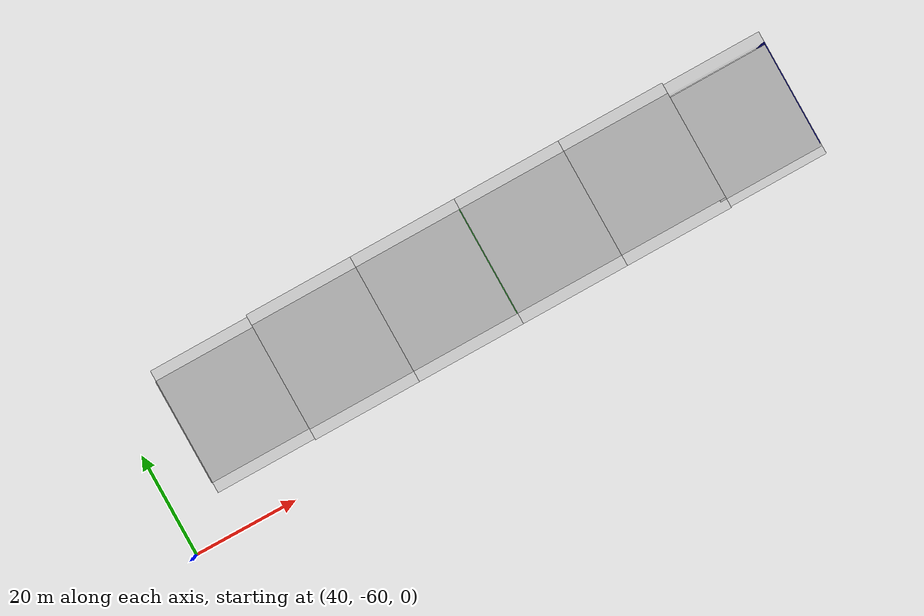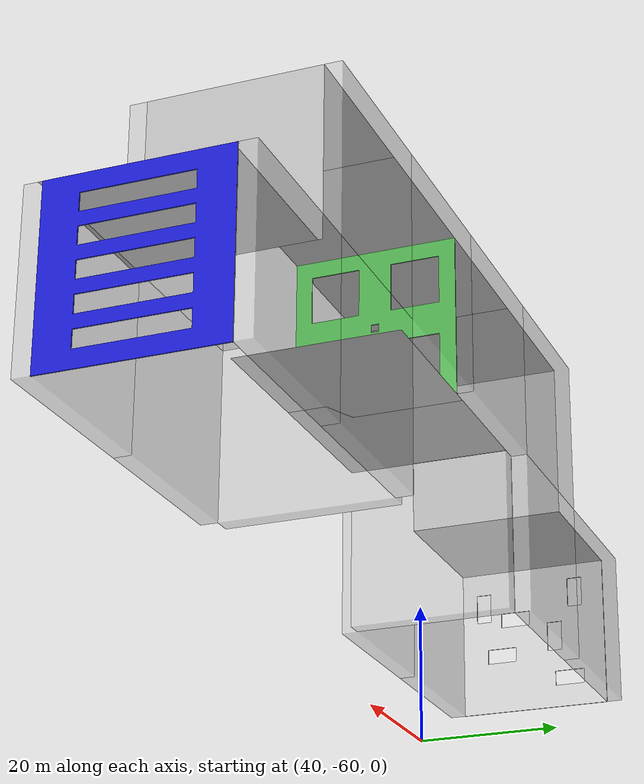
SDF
<?xml version='1.0'?>
<sdf version='1.7'>
  <model name='race_1_05'>
    <link name='link_clone_10'>
      <self_collide>0</self_collide>
      <enable_wind>0</enable_wind>
      <kinematic>0</kinematic>
      <pose>100 -51 30 1.5708 -0 0</pose>
      <visual name='visual'>
        <cast_shadows>1</cast_shadows>
        <transparency>0.6</transparency>
        <geometry>
          <box>
            <size>20 20 2</size>
          </box>
        </geometry>
        <material>
          <script>
            <uri>model://new_wall/materials/scripts</uri>
            <uri>model://new_wall/materials/textures/</uri>
            <name>NewWall/Image</name>
          </script>
          <shader type='pixel'/>
        </material>
        <pose>0 0 0 0 -0 0</pose>
      </visual>
      <collision name='collision'>
        <laser_retro>0</laser_retro>
        <max_contacts>10</max_contacts>
        <pose>0 0 0 0 -0 0</pose>
        <geometry>
          <box>
            <size>20 20 2</size>
          </box>
        </geometry>
        <surface>
          <friction>
            <ode>
              <mu>1</mu>
              <mu2>1</mu2>
              <fdir1>0 0 0</fdir1>
              <slip1>0</slip1>
              <slip2>0</slip2>
            </ode>
            <torsional>
              <coefficient>1</coefficient>
              <patch_radius>0</patch_radius>
              <surface_radius>0</surface_radius>
              <use_patch_radius>1</use_patch_radius>
              <ode>
                <slip>0</slip>
              </ode>
            </torsional>
          </friction>
          <bounce>
            <restitution_coefficient>0</restitution_coefficient>
            <threshold>1e+06</threshold>
          </bounce>
          <contact>
            <collide_without_contact>0</collide_without_contact>
            <collide_without_contact_bitmask>1</collide_without_contact_bitmask>
            <collide_bitmask>1</collide_bitmask>
            <ode>
              <soft_cfm>0</soft_cfm>
              <soft_erp>0.2</soft_erp>
              <kp>1e+13</kp>
              <kd>1</kd>
              <max_vel>0.01</max_vel>
              <min_depth>0</min_depth>
            </ode>
            <bullet>
              <split_impulse>1</split_impulse>
              <split_impulse_penetration_threshold>-0.01</split_impulse_penetration_threshold>
              <soft_cfm>0</soft_cfm>
              <soft_erp>0.2</soft_erp>
              <kp>1e+13</kp>
              <kd>1</kd>
            </bullet>
          </contact>
        </surface>
      </collision>
    </link>
    <link name='link_clone_10_clone'>
      <self_collide>0</self_collide>
      <enable_wind>0</enable_wind>
      <kinematic>0</kinematic>
      <pose>120 -51 30 1.5708 -0 0</pose>
      <visual name='visual'>
        <cast_shadows>1</cast_shadows>
        <transparency>0.6</transparency>
        <geometry>
          <box>
            <size>20 20 2</size>
          </box>
        </geometry>
        <material>
          <script>
            <uri>model://new_wall/materials/scripts</uri>
            <uri>model://new_wall/materials/textures/</uri>
            <name>NewWall/Image</name>
          </script>
          <shader type='pixel'/>
        </material>
        <pose>0 0 0 0 -0 0</pose>
      </visual>
      <collision name='collision'>
        <laser_retro>0</laser_retro>
        <max_contacts>10</max_contacts>
        <pose>0 0 0 0 -0 0</pose>
        <geometry>
          <box>
            <size>20 20 2</size>
          </box>
        </geometry>
        <surface>
          <friction>
            <ode>
              <mu>1</mu>
              <mu2>1</mu2>
              <fdir1>0 0 0</fdir1>
              <slip1>0</slip1>
              <slip2>0</slip2>
            </ode>
            <torsional>
              <coefficient>1</coefficient>
              <patch_radius>0</patch_radius>
              <surface_radius>0</surface_radius>
              <use_patch_radius>1</use_patch_radius>
              <ode>
                <slip>0</slip>
              </ode>
            </torsional>
          </friction>
          <bounce>
            <restitution_coefficient>0</restitution_coefficient>
            <threshold>1e+06</threshold>
          </bounce>
          <contact>
            <collide_without_contact>0</collide_without_contact>
            <collide_without_contact_bitmask>1</collide_without_contact_bitmask>
            <collide_bitmask>1</collide_bitmask>
            <ode>
              <soft_cfm>0</soft_cfm>
              <soft_erp>0.2</soft_erp>
              <kp>1e+13</kp>
              <kd>1</kd>
              <max_vel>0.01</max_vel>
              <min_depth>0</min_depth>
            </ode>
            <bullet>
              <split_impulse>1</split_impulse>
              <split_impulse_penetration_threshold>-0.01</split_impulse_penetration_threshold>
              <soft_cfm>0</soft_cfm>
              <soft_erp>0.2</soft_erp>
              <kp>1e+13</kp>
              <kd>1</kd>
            </bullet>
          </contact>
        </surface>
      </collision>
    </link>
    <link name='link_clone_10_clone_0'>
      <self_collide>0</self_collide>
      <enable_wind>0</enable_wind>
      <kinematic>0</kinematic>
      <pose>100 -29 30 1.5708 -0 0</pose>
      <visual name='visual'>
        <cast_shadows>1</cast_shadows>
        <transparency>0.6</transparency>
        <geometry>
          <box>
            <size>20 20 2</size>
          </box>
        </geometry>
        <material>
          <script>
            <uri>model://new_wall/materials/scripts</uri>
            <uri>model://new_wall/materials/textures/</uri>
            <name>NewWall/Image</name>
          </script>
          <shader type='pixel'/>
        </material>
        <pose>0 0 0 0 -0 0</pose>
      </visual>
      <collision name='collision'>
        <laser_retro>0</laser_retro>
        <max_contacts>10</max_contacts>
        <pose>0 0 0 0 -0 0</pose>
        <geometry>
          <box>
            <size>20 20 2</size>
          </box>
        </geometry>
        <surface>
          <friction>
            <ode>
              <mu>1</mu>
              <mu2>1</mu2>
              <fdir1>0 0 0</fdir1>
              <slip1>0</slip1>
              <slip2>0</slip2>
            </ode>
            <torsional>
              <coefficient>1</coefficient>
              <patch_radius>0</patch_radius>
              <surface_radius>0</surface_radius>
              <use_patch_radius>1</use_patch_radius>
              <ode>
                <slip>0</slip>
              </ode>
            </torsional>
          </friction>
          <bounce>
            <restitution_coefficient>0</restitution_coefficient>
            <threshold>1e+06</threshold>
          </bounce>
          <contact>
            <collide_without_contact>0</collide_without_contact>
            <collide_without_contact_bitmask>1</collide_without_contact_bitmask>
            <collide_bitmask>1</collide_bitmask>
            <ode>
              <soft_cfm>0</soft_cfm>
              <soft_erp>0.2</soft_erp>
              <kp>1e+13</kp>
              <kd>1</kd>
              <max_vel>0.01</max_vel>
              <min_depth>0</min_depth>
            </ode>
            <bullet>
              <split_impulse>1</split_impulse>
              <split_impulse_penetration_threshold>-0.01</split_impulse_penetration_threshold>
              <soft_cfm>0</soft_cfm>
              <soft_erp>0.2</soft_erp>
              <kp>1e+13</kp>
              <kd>1</kd>
            </bullet>
          </contact>
        </surface>
      </collision>
    </link>
    <link name='link_clone_10_clone_1'>
      <self_collide>0</self_collide>
      <enable_wind>0</enable_wind>
      <kinematic>0</kinematic>
      <pose>120 -29 30 1.5708 -0 0</pose>
      <visual name='visual'>
        <cast_shadows>1</cast_shadows>
        <transparency>0.6</transparency>
        <geometry>
          <box>
            <size>20 20 2</size>
          </box>
        </geometry>
        <material>
          <script>
            <uri>model://new_wall/materials/scripts</uri>
            <uri>model://new_wall/materials/textures/</uri>
            <name>NewWall/Image</name>
          </script>
          <shader type='pixel'/>
        </material>
        <pose>0 0 0 0 -0 0</pose>
      </visual>
      <collision name='collision'>
        <laser_retro>0</laser_retro>
        <max_contacts>10</max_contacts>
        <pose>0 0 0 0 -0 0</pose>
        <geometry>
          <box>
            <size>20 20 2</size>
          </box>
        </geometry>
        <surface>
          <friction>
            <ode>
              <mu>1</mu>
              <mu2>1</mu2>
              <fdir1>0 0 0</fdir1>
              <slip1>0</slip1>
              <slip2>0</slip2>
            </ode>
            <torsional>
              <coefficient>1</coefficient>
              <patch_radius>0</patch_radius>
              <surface_radius>0</surface_radius>
              <use_patch_radius>1</use_patch_radius>
              <ode>
                <slip>0</slip>
              </ode>
            </torsional>
          </friction>
          <bounce>
            <restitution_coefficient>0</restitution_coefficient>
            <threshold>1e+06</threshold>
          </bounce>
          <contact>
            <collide_without_contact>0</collide_without_contact>
            <collide_without_contact_bitmask>1</collide_without_contact_bitmask>
            <collide_bitmask>1</collide_bitmask>
            <ode>
              <soft_cfm>0</soft_cfm>
              <soft_erp>0.2</soft_erp>
              <kp>1e+13</kp>
              <kd>1</kd>
              <max_vel>0.01</max_vel>
              <min_depth>0</min_depth>
            </ode>
            <bullet>
              <split_impulse>1</split_impulse>
              <split_impulse_penetration_threshold>-0.01</split_impulse_penetration_threshold>
              <soft_cfm>0</soft_cfm>
              <soft_erp>0.2</soft_erp>
              <kp>1e+13</kp>
              <kd>1</kd>
            </bullet>
          </contact>
        </surface>
      </collision>
    </link>
    <link name='link_clone_10_clone_2'>
      <self_collide>0</self_collide>
      <enable_wind>0</enable_wind>
      <kinematic>0</kinematic>
      <pose>80 -51 30 1.5708 -0 0</pose>
      <visual name='visual'>
        <cast_shadows>1</cast_shadows>
        <transparency>0.6</transparency>
        <geometry>
          <box>
            <size>20 20 2</size>
          </box>
        </geometry>
        <material>
          <script>
            <uri>model://new_wall/materials/scripts</uri>
            <uri>model://new_wall/materials/textures/</uri>
            <name>NewWall/Image</name>
          </script>
          <shader type='pixel'/>
        </material>
        <pose>0 0 0 0 -0 0</pose>
      </visual>
      <collision name='collision'>
        <laser_retro>0</laser_retro>
        <max_contacts>10</max_contacts>
        <pose>0 0 0 0 -0 0</pose>
        <geometry>
          <box>
            <size>20 20 2</size>
          </box>
        </geometry>
        <surface>
          <friction>
            <ode>
              <mu>1</mu>
              <mu2>1</mu2>
              <fdir1>0 0 0</fdir1>
              <slip1>0</slip1>
              <slip2>0</slip2>
            </ode>
            <torsional>
              <coefficient>1</coefficient>
              <patch_radius>0</patch_radius>
              <surface_radius>0</surface_radius>
              <use_patch_radius>1</use_patch_radius>
              <ode>
                <slip>0</slip>
              </ode>
            </torsional>
          </friction>
          <bounce>
            <restitution_coefficient>0</restitution_coefficient>
            <threshold>1e+06</threshold>
          </bounce>
          <contact>
            <collide_without_contact>0</collide_without_contact>
            <collide_without_contact_bitmask>1</collide_without_contact_bitmask>
            <collide_bitmask>1</collide_bitmask>
            <ode>
              <soft_cfm>0</soft_cfm>
              <soft_erp>0.2</soft_erp>
              <kp>1e+13</kp>
              <kd>1</kd>
              <max_vel>0.01</max_vel>
              <min_depth>0</min_depth>
            </ode>
            <bullet>
              <split_impulse>1</split_impulse>
              <split_impulse_penetration_threshold>-0.01</split_impulse_penetration_threshold>
              <soft_cfm>0</soft_cfm>
              <soft_erp>0.2</soft_erp>
              <kp>1e+13</kp>
              <kd>1</kd>
            </bullet>
          </contact>
        </surface>
      </collision>
    </link>
    <link name='link_clone_10_clone_3'>
      <self_collide>0</self_collide>
      <enable_wind>0</enable_wind>
      <kinematic>0</kinematic>
      <pose>140 -51 30 1.5708 -0 0</pose>
      <visual name='visual'>
        <cast_shadows>1</cast_shadows>
        <transparency>0.6</transparency>
        <geometry>
          <box>
            <size>20 20 2</size>
          </box>
        </geometry>
        <material>
          <script>
            <uri>model://new_wall/materials/scripts</uri>
            <uri>model://new_wall/materials/textures/</uri>
            <name>NewWall/Image</name>
          </script>
          <shader type='pixel'/>
        </material>
        <pose>0 0 0 0 -0 0</pose>
      </visual>
      <collision name='collision'>
        <laser_retro>0</laser_retro>
        <max_contacts>10</max_contacts>
        <pose>0 0 0 0 -0 0</pose>
        <geometry>
          <box>
            <size>20 20 2</size>
          </box>
        </geometry>
        <surface>
          <friction>
            <ode>
              <mu>1</mu>
              <mu2>1</mu2>
              <fdir1>0 0 0</fdir1>
              <slip1>0</slip1>
              <slip2>0</slip2>
            </ode>
            <torsional>
              <coefficient>1</coefficient>
              <patch_radius>0</patch_radius>
              <surface_radius>0</surface_radius>
              <use_patch_radius>1</use_patch_radius>
              <ode>
                <slip>0</slip>
              </ode>
            </torsional>
          </friction>
          <bounce>
            <restitution_coefficient>0</restitution_coefficient>
            <threshold>1e+06</threshold>
          </bounce>
          <contact>
            <collide_without_contact>0</collide_without_contact>
            <collide_without_contact_bitmask>1</collide_without_contact_bitmask>
            <collide_bitmask>1</collide_bitmask>
            <ode>
              <soft_cfm>0</soft_cfm>
              <soft_erp>0.2</soft_erp>
              <kp>1e+13</kp>
              <kd>1</kd>
              <max_vel>0.01</max_vel>
              <min_depth>0</min_depth>
            </ode>
            <bullet>
              <split_impulse>1</split_impulse>
              <split_impulse_penetration_threshold>-0.01</split_impulse_penetration_threshold>
              <soft_cfm>0</soft_cfm>
              <soft_erp>0.2</soft_erp>
              <kp>1e+13</kp>
              <kd>1</kd>
            </bullet>
          </contact>
        </surface>
      </collision>
    </link>
    <link name='link_clone_10_clone_4'>
      <self_collide>0</self_collide>
      <enable_wind>0</enable_wind>
      <kinematic>0</kinematic>
      <pose>80 -29 30 1.5708 -0 0</pose>
      <visual name='visual'>
        <cast_shadows>1</cast_shadows>
        <transparency>0.6</transparency>
        <geometry>
          <box>
            <size>20 20 2</size>
          </box>
        </geometry>
        <material>
          <script>
            <uri>model://new_wall/materials/scripts</uri>
            <uri>model://new_wall/materials/textures/</uri>
            <name>NewWall/Image</name>
          </script>
          <shader type='pixel'/>
        </material>
        <pose>0 0 0 0 -0 0</pose>
      </visual>
      <collision name='collision'>
        <laser_retro>0</laser_retro>
        <max_contacts>10</max_contacts>
        <pose>0 0 0 0 -0 0</pose>
        <geometry>
          <box>
            <size>20 20 2</size>
          </box>
        </geometry>
        <surface>
          <friction>
            <ode>
              <mu>1</mu>
              <mu2>1</mu2>
              <fdir1>0 0 0</fdir1>
              <slip1>0</slip1>
              <slip2>0</slip2>
            </ode>
            <torsional>
              <coefficient>1</coefficient>
              <patch_radius>0</patch_radius>
              <surface_radius>0</surface_radius>
              <use_patch_radius>1</use_patch_radius>
              <ode>
                <slip>0</slip>
              </ode>
            </torsional>
          </friction>
          <bounce>
            <restitution_coefficient>0</restitution_coefficient>
            <threshold>1e+06</threshold>
          </bounce>
          <contact>
            <collide_without_contact>0</collide_without_contact>
            <collide_without_contact_bitmask>1</collide_without_contact_bitmask>
            <collide_bitmask>1</collide_bitmask>
            <ode>
              <soft_cfm>0</soft_cfm>
              <soft_erp>0.2</soft_erp>
              <kp>1e+13</kp>
              <kd>1</kd>
              <max_vel>0.01</max_vel>
              <min_depth>0</min_depth>
            </ode>
            <bullet>
              <split_impulse>1</split_impulse>
              <split_impulse_penetration_threshold>-0.01</split_impulse_penetration_threshold>
              <soft_cfm>0</soft_cfm>
              <soft_erp>0.2</soft_erp>
              <kp>1e+13</kp>
              <kd>1</kd>
            </bullet>
          </contact>
        </surface>
      </collision>
    </link>
    <link name='link_clone_10_clone_5'>
      <self_collide>0</self_collide>
      <enable_wind>0</enable_wind>
      <kinematic>0</kinematic>
      <pose>140 -29 30 1.5708 -0 0</pose>
      <visual name='visual'>
        <cast_shadows>1</cast_shadows>
        <transparency>0.6</transparency>
        <geometry>
          <box>
            <size>20 20 2</size>
          </box>
        </geometry>
        <material>
          <script>
            <uri>model://new_wall/materials/scripts</uri>
            <uri>model://new_wall/materials/textures/</uri>
            <name>NewWall/Image</name>
          </script>
          <shader type='pixel'/>
        </material>
        <pose>0 0 0 0 -0 0</pose>
      </visual>
      <collision name='collision'>
        <laser_retro>0</laser_retro>
        <max_contacts>10</max_contacts>
        <pose>0 0 0 0 -0 0</pose>
        <geometry>
          <box>
            <size>20 20 2</size>
          </box>
        </geometry>
        <surface>
          <friction>
            <ode>
              <mu>1</mu>
              <mu2>1</mu2>
              <fdir1>0 0 0</fdir1>
              <slip1>0</slip1>
              <slip2>0</slip2>
            </ode>
            <torsional>
              <coefficient>1</coefficient>
              <patch_radius>0</patch_radius>
              <surface_radius>0</surface_radius>
              <use_patch_radius>1</use_patch_radius>
              <ode>
                <slip>0</slip>
              </ode>
            </torsional>
          </friction>
          <bounce>
            <restitution_coefficient>0</restitution_coefficient>
            <threshold>1e+06</threshold>
          </bounce>
          <contact>
            <collide_without_contact>0</collide_without_contact>
            <collide_without_contact_bitmask>1</collide_without_contact_bitmask>
            <collide_bitmask>1</collide_bitmask>
            <ode>
              <soft_cfm>0</soft_cfm>
              <soft_erp>0.2</soft_erp>
              <kp>1e+13</kp>
              <kd>1</kd>
              <max_vel>0.01</max_vel>
              <min_depth>0</min_depth>
            </ode>
            <bullet>
              <split_impulse>1</split_impulse>
              <split_impulse_penetration_threshold>-0.01</split_impulse_penetration_threshold>
              <soft_cfm>0</soft_cfm>
              <soft_erp>0.2</soft_erp>
              <kp>1e+13</kp>
              <kd>1</kd>
            </bullet>
          </contact>
        </surface>
      </collision>
    </link>
    <link name='link_clone_12'>
      <self_collide>0</self_collide>
      <enable_wind>0</enable_wind>
      <kinematic>0</kinematic>
      <pose>140 -29 10 1.5708 -0 0</pose>
      <visual name='visual'>
        <cast_shadows>1</cast_shadows>
        <transparency>0.6</transparency>
        <geometry>
          <box>
            <size>20 20 2</size>
          </box>
        </geometry>
        <material>
          <script>
            <uri>model://new_wall/materials/scripts</uri>
            <uri>model://new_wall/materials/textures/</uri>
            <name>NewWall/Image</name>
          </script>
          <shader type='pixel'/>
        </material>
        <pose>0 0 0 0 -0 0</pose>
      </visual>
      <collision name='collision'>
        <laser_retro>0</laser_retro>
        <max_contacts>10</max_contacts>
        <pose>0 0 0 0 -0 0</pose>
        <geometry>
          <box>
            <size>20 20 2</size>
          </box>
        </geometry>
        <surface>
          <friction>
            <ode>
              <mu>1</mu>
              <mu2>1</mu2>
              <fdir1>0 0 0</fdir1>
              <slip1>0</slip1>
              <slip2>0</slip2>
            </ode>
            <torsional>
              <coefficient>1</coefficient>
              <patch_radius>0</patch_radius>
              <surface_radius>0</surface_radius>
              <use_patch_radius>1</use_patch_radius>
              <ode>
                <slip>0</slip>
              </ode>
            </torsional>
          </friction>
          <bounce>
            <restitution_coefficient>0</restitution_coefficient>
            <threshold>1e+06</threshold>
          </bounce>
          <contact>
            <collide_without_contact>0</collide_without_contact>
            <collide_without_contact_bitmask>1</collide_without_contact_bitmask>
            <collide_bitmask>1</collide_bitmask>
            <ode>
              <soft_cfm>0</soft_cfm>
              <soft_erp>0.2</soft_erp>
              <kp>1e+13</kp>
              <kd>1</kd>
              <max_vel>0.01</max_vel>
              <min_depth>0</min_depth>
            </ode>
            <bullet>
              <split_impulse>1</split_impulse>
              <split_impulse_penetration_threshold>-0.01</split_impulse_penetration_threshold>
              <soft_cfm>0</soft_cfm>
              <soft_erp>0.2</soft_erp>
              <kp>1e+13</kp>
              <kd>1</kd>
            </bullet>
          </contact>
        </surface>
      </collision>
    </link>
    <link name='link_clone_13'>
      <self_collide>0</self_collide>
      <enable_wind>0</enable_wind>
      <kinematic>0</kinematic>
      <pose>160 -29 10 1.5708 -0 0</pose>
      <visual name='visual'>
        <cast_shadows>1</cast_shadows>
        <transparency>0.6</transparency>
        <geometry>
          <box>
            <size>20 20 2</size>
          </box>
        </geometry>
        <material>
          <script>
            <uri>model://new_wall/materials/scripts</uri>
            <uri>model://new_wall/materials/textures/</uri>
            <name>NewWall/Image</name>
          </script>
          <shader type='pixel'/>
        </material>
        <pose>0 0 0 0 -0 0</pose>
      </visual>
      <collision name='collision'>
        <laser_retro>0</laser_retro>
        <max_contacts>10</max_contacts>
        <pose>0 0 0 0 -0 0</pose>
        <geometry>
          <box>
            <size>20 20 2</size>
          </box>
        </geometry>
        <surface>
          <friction>
            <ode>
              <mu>1</mu>
              <mu2>1</mu2>
              <fdir1>0 0 0</fdir1>
              <slip1>0</slip1>
              <slip2>0</slip2>
            </ode>
            <torsional>
              <coefficient>1</coefficient>
              <patch_radius>0</patch_radius>
              <surface_radius>0</surface_radius>
              <use_patch_radius>1</use_patch_radius>
              <ode>
                <slip>0</slip>
              </ode>
            </torsional>
          </friction>
          <bounce>
            <restitution_coefficient>0</restitution_coefficient>
            <threshold>1e+06</threshold>
          </bounce>
          <contact>
            <collide_without_contact>0</collide_without_contact>
            <collide_without_contact_bitmask>1</collide_without_contact_bitmask>
            <collide_bitmask>1</collide_bitmask>
            <ode>
              <soft_cfm>0</soft_cfm>
              <soft_erp>0.2</soft_erp>
              <kp>1e+13</kp>
              <kd>1</kd>
              <max_vel>0.01</max_vel>
              <min_depth>0</min_depth>
            </ode>
            <bullet>
              <split_impulse>1</split_impulse>
              <split_impulse_penetration_threshold>-0.01</split_impulse_penetration_threshold>
              <soft_cfm>0</soft_cfm>
              <soft_erp>0.2</soft_erp>
              <kp>1e+13</kp>
              <kd>1</kd>
            </bullet>
          </contact>
        </surface>
      </collision>
    </link>
    <link name='link_clone_14'>
      <self_collide>0</self_collide>
      <enable_wind>0</enable_wind>
      <kinematic>0</kinematic>
      <pose>140 -51 10 1.5708 -0 0</pose>
      <visual name='visual'>
        <cast_shadows>1</cast_shadows>
        <transparency>0.6</transparency>
        <geometry>
          <box>
            <size>20 20 2</size>
          </box>
        </geometry>
        <material>
          <script>
            <uri>model://new_wall/materials/scripts</uri>
            <uri>model://new_wall/materials/textures/</uri>
            <name>NewWall/Image</name>
          </script>
          <shader type='pixel'/>
        </material>
        <pose>0 0 0 0 -0 0</pose>
      </visual>
      <collision name='collision'>
        <laser_retro>0</laser_retro>
        <max_contacts>10</max_contacts>
        <pose>0 0 0 0 -0 0</pose>
        <geometry>
          <box>
            <size>20 20 2</size>
          </box>
        </geometry>
        <surface>
          <friction>
            <ode>
              <mu>1</mu>
              <mu2>1</mu2>
              <fdir1>0 0 0</fdir1>
              <slip1>0</slip1>
              <slip2>0</slip2>
            </ode>
            <torsional>
              <coefficient>1</coefficient>
              <patch_radius>0</patch_radius>
              <surface_radius>0</surface_radius>
              <use_patch_radius>1</use_patch_radius>
              <ode>
                <slip>0</slip>
              </ode>
            </torsional>
          </friction>
          <bounce>
            <restitution_coefficient>0</restitution_coefficient>
            <threshold>1e+06</threshold>
          </bounce>
          <contact>
            <collide_without_contact>0</collide_without_contact>
            <collide_without_contact_bitmask>1</collide_without_contact_bitmask>
            <collide_bitmask>1</collide_bitmask>
            <ode>
              <soft_cfm>0</soft_cfm>
              <soft_erp>0.2</soft_erp>
              <kp>1e+13</kp>
              <kd>1</kd>
              <max_vel>0.01</max_vel>
              <min_depth>0</min_depth>
            </ode>
            <bullet>
              <split_impulse>1</split_impulse>
              <split_impulse_penetration_threshold>-0.01</split_impulse_penetration_threshold>
              <soft_cfm>0</soft_cfm>
              <soft_erp>0.2</soft_erp>
              <kp>1e+13</kp>
              <kd>1</kd>
            </bullet>
          </contact>
        </surface>
      </collision>
    </link>
    <link name='link_clone_15'>
      <self_collide>0</self_collide>
      <enable_wind>0</enable_wind>
      <kinematic>0</kinematic>
      <pose>160 -51 10 1.5708 -0 0</pose>
      <visual name='visual'>
        <cast_shadows>1</cast_shadows>
        <transparency>0.6</transparency>
        <geometry>
          <box>
            <size>20 20 2</size>
          </box>
        </geometry>
        <material>
          <script>
            <uri>model://new_wall/materials/scripts</uri>
            <uri>model://new_wall/materials/textures/</uri>
            <name>NewWall/Image</name>
          </script>
          <shader type='pixel'/>
        </material>
        <pose>0 0 0 0 -0 0</pose>
      </visual>
      <collision name='collision'>
        <laser_retro>0</laser_retro>
        <max_contacts>10</max_contacts>
        <pose>0 0 0 0 -0 0</pose>
        <geometry>
          <box>
            <size>20 20 2</size>
          </box>
        </geometry>
        <surface>
          <friction>
            <ode>
              <mu>1</mu>
              <mu2>1</mu2>
              <fdir1>0 0 0</fdir1>
              <slip1>0</slip1>
              <slip2>0</slip2>
            </ode>
            <torsional>
              <coefficient>1</coefficient>
              <patch_radius>0</patch_radius>
              <surface_radius>0</surface_radius>
              <use_patch_radius>1</use_patch_radius>
              <ode>
                <slip>0</slip>
              </ode>
            </torsional>
          </friction>
          <bounce>
            <restitution_coefficient>0</restitution_coefficient>
            <threshold>1e+06</threshold>
          </bounce>
          <contact>
            <collide_without_contact>0</collide_without_contact>
            <collide_without_contact_bitmask>1</collide_without_contact_bitmask>
            <collide_bitmask>1</collide_bitmask>
            <ode>
              <soft_cfm>0</soft_cfm>
              <soft_erp>0.2</soft_erp>
              <kp>1e+13</kp>
              <kd>1</kd>
              <max_vel>0.01</max_vel>
              <min_depth>0</min_depth>
            </ode>
            <bullet>
              <split_impulse>1</split_impulse>
              <split_impulse_penetration_threshold>-0.01</split_impulse_penetration_threshold>
              <soft_cfm>0</soft_cfm>
              <soft_erp>0.2</soft_erp>
              <kp>1e+13</kp>
              <kd>1</kd>
            </bullet>
          </contact>
        </surface>
      </collision>
    </link>
    <link name='link_clone_3_clone_16'>
      <self_collide>0</self_collide>
      <enable_wind>0</enable_wind>
      <kinematic>0</kinematic>
      <pose>129 -40 10 1.5708 -0 1.5708</pose>
      <visual name='visual'>
        <cast_shadows>1</cast_shadows>
        <transparency>0.6</transparency>
        <geometry>
          <box>
            <size>20 20 2</size>
          </box>
        </geometry>
        <material>
          <script>
            <uri>model://new_wall/materials/scripts</uri>
            <uri>model://new_wall/materials/textures/</uri>
            <name>NewWall/Image</name>
          </script>
          <shader type='pixel'/>
        </material>
        <pose>0 0 0 0 -0 0</pose>
      </visual>
      <collision name='collision'>
        <laser_retro>0</laser_retro>
        <max_contacts>10</max_contacts>
        <pose>0 0 0 0 -0 0</pose>
        <geometry>
          <box>
            <size>20 20 2</size>
          </box>
        </geometry>
        <surface>
          <friction>
            <ode>
              <mu>1</mu>
              <mu2>1</mu2>
              <fdir1>0 0 0</fdir1>
              <slip1>0</slip1>
              <slip2>0</slip2>
            </ode>
            <torsional>
              <coefficient>1</coefficient>
              <patch_radius>0</patch_radius>
              <surface_radius>0</surface_radius>
              <use_patch_radius>1</use_patch_radius>
              <ode>
                <slip>0</slip>
              </ode>
            </torsional>
          </friction>
          <bounce>
            <restitution_coefficient>0</restitution_coefficient>
            <threshold>1e+06</threshold>
          </bounce>
          <contact>
            <collide_without_contact>0</collide_without_contact>
            <collide_without_contact_bitmask>1</collide_without_contact_bitmask>
            <collide_bitmask>1</collide_bitmask>
            <ode>
              <soft_cfm>0</soft_cfm>
              <soft_erp>0.2</soft_erp>
              <kp>1e+13</kp>
              <kd>1</kd>
              <max_vel>0.01</max_vel>
              <min_depth>0</min_depth>
            </ode>
            <bullet>
              <split_impulse>1</split_impulse>
              <split_impulse_penetration_threshold>-0.01</split_impulse_penetration_threshold>
              <soft_cfm>0</soft_cfm>
              <soft_erp>0.2</soft_erp>
              <kp>1e+13</kp>
              <kd>1</kd>
            </bullet>
          </contact>
        </surface>
      </collision>
    </link>
    <link name='link_clone_3_clone_17'>
      <self_collide>0</self_collide>
      <enable_wind>0</enable_wind>
      <kinematic>0</kinematic>
      <pose>91.1498 -39.9893 10 1.5708 -0 1.5708</pose>
      <visual name='visual'>
        <cast_shadows>1</cast_shadows>
        <transparency>0.6</transparency>
        <geometry>
          <box>
            <size>20 20 2</size>
          </box>
        </geometry>
        <material>
          <script>
            <uri>model://new_wall/materials/scripts</uri>
            <uri>model://new_wall/materials/textures/</uri>
            <name>NewWall/Image</name>
          </script>
          <shader type='pixel'/>
        </material>
        <pose>0 0 0 0 -0 0</pose>
      </visual>
      <collision name='collision'>
        <laser_retro>0</laser_retro>
        <max_contacts>10</max_contacts>
        <pose>0 0 0 0 -0 0</pose>
        <geometry>
          <box>
            <size>20 20 2</size>
          </box>
        </geometry>
        <surface>
          <friction>
            <ode>
              <mu>1</mu>
              <mu2>1</mu2>
              <fdir1>0 0 0</fdir1>
              <slip1>0</slip1>
              <slip2>0</slip2>
            </ode>
            <torsional>
              <coefficient>1</coefficient>
              <patch_radius>0</patch_radius>
              <surface_radius>0</surface_radius>
              <use_patch_radius>1</use_patch_radius>
              <ode>
                <slip>0</slip>
              </ode>
            </torsional>
          </friction>
          <bounce>
            <restitution_coefficient>0</restitution_coefficient>
            <threshold>1e+06</threshold>
          </bounce>
          <contact>
            <collide_without_contact>0</collide_without_contact>
            <collide_without_contact_bitmask>1</collide_without_contact_bitmask>
            <collide_bitmask>1</collide_bitmask>
            <ode>
              <soft_cfm>0</soft_cfm>
              <soft_erp>0.2</soft_erp>
              <kp>1e+13</kp>
              <kd>1</kd>
              <max_vel>0.01</max_vel>
              <min_depth>0</min_depth>
            </ode>
            <bullet>
              <split_impulse>1</split_impulse>
              <split_impulse_penetration_threshold>-0.01</split_impulse_penetration_threshold>
              <soft_cfm>0</soft_cfm>
              <soft_erp>0.2</soft_erp>
              <kp>1e+13</kp>
              <kd>1</kd>
            </bullet>
          </contact>
        </surface>
      </collision>
    </link>
    <link name='link_clone_5'>
      <self_collide>0</self_collide>
      <enable_wind>0</enable_wind>
      <kinematic>0</kinematic>
      <pose>60 -29 10 1.5708 -0 0</pose>
      <visual name='visual'>
        <cast_shadows>1</cast_shadows>
        <transparency>0.6</transparency>
        <geometry>
          <box>
            <size>20 20 2</size>
          </box>
        </geometry>
        <material>
          <script>
            <uri>model://new_wall/materials/scripts</uri>
            <uri>model://new_wall/materials/textures/</uri>
            <name>NewWall/Image</name>
          </script>
          <shader type='pixel'/>
        </material>
        <pose>0 0 0 0 -0 0</pose>
      </visual>
      <collision name='collision'>
        <laser_retro>0</laser_retro>
        <max_contacts>10</max_contacts>
        <pose>0 0 0 0 -0 0</pose>
        <geometry>
          <box>
            <size>20 20 2</size>
          </box>
        </geometry>
        <surface>
          <friction>
            <ode>
              <mu>1</mu>
              <mu2>1</mu2>
              <fdir1>0 0 0</fdir1>
              <slip1>0</slip1>
              <slip2>0</slip2>
            </ode>
            <torsional>
              <coefficient>1</coefficient>
              <patch_radius>0</patch_radius>
              <surface_radius>0</surface_radius>
              <use_patch_radius>1</use_patch_radius>
              <ode>
                <slip>0</slip>
              </ode>
            </torsional>
          </friction>
          <bounce>
            <restitution_coefficient>0</restitution_coefficient>
            <threshold>1e+06</threshold>
          </bounce>
          <contact>
            <collide_without_contact>0</collide_without_contact>
            <collide_without_contact_bitmask>1</collide_without_contact_bitmask>
            <collide_bitmask>1</collide_bitmask>
            <ode>
              <soft_cfm>0</soft_cfm>
              <soft_erp>0.2</soft_erp>
              <kp>1e+13</kp>
              <kd>1</kd>
              <max_vel>0.01</max_vel>
              <min_depth>0</min_depth>
            </ode>
            <bullet>
              <split_impulse>1</split_impulse>
              <split_impulse_penetration_threshold>-0.01</split_impulse_penetration_threshold>
              <soft_cfm>0</soft_cfm>
              <soft_erp>0.2</soft_erp>
              <kp>1e+13</kp>
              <kd>1</kd>
            </bullet>
          </contact>
        </surface>
      </collision>
    </link>
    <link name='link_clone_6'>
      <self_collide>0</self_collide>
      <enable_wind>0</enable_wind>
      <kinematic>0</kinematic>
      <pose>60 -51 10 1.5708 -0 0</pose>
      <visual name='visual'>
        <cast_shadows>1</cast_shadows>
        <transparency>0.6</transparency>
        <geometry>
          <box>
            <size>20 20 2</size>
          </box>
        </geometry>
        <material>
          <script>
            <uri>model://new_wall/materials/scripts</uri>
            <uri>model://new_wall/materials/textures/</uri>
            <name>NewWall/Image</name>
          </script>
          <shader type='pixel'/>
        </material>
        <pose>0 0 0 0 -0 0</pose>
      </visual>
      <collision name='collision'>
        <laser_retro>0</laser_retro>
        <max_contacts>10</max_contacts>
        <pose>0 0 0 0 -0 0</pose>
        <geometry>
          <box>
            <size>20 20 2</size>
          </box>
        </geometry>
        <surface>
          <friction>
            <ode>
              <mu>1</mu>
              <mu2>1</mu2>
              <fdir1>0 0 0</fdir1>
              <slip1>0</slip1>
              <slip2>0</slip2>
            </ode>
            <torsional>
              <coefficient>1</coefficient>
              <patch_radius>0</patch_radius>
              <surface_radius>0</surface_radius>
              <use_patch_radius>1</use_patch_radius>
              <ode>
                <slip>0</slip>
              </ode>
            </torsional>
          </friction>
          <bounce>
            <restitution_coefficient>0</restitution_coefficient>
            <threshold>1e+06</threshold>
          </bounce>
          <contact>
            <collide_without_contact>0</collide_without_contact>
            <collide_without_contact_bitmask>1</collide_without_contact_bitmask>
            <collide_bitmask>1</collide_bitmask>
            <ode>
              <soft_cfm>0</soft_cfm>
              <soft_erp>0.2</soft_erp>
              <kp>1e+13</kp>
              <kd>1</kd>
              <max_vel>0.01</max_vel>
              <min_depth>0</min_depth>
            </ode>
            <bullet>
              <split_impulse>1</split_impulse>
              <split_impulse_penetration_threshold>-0.01</split_impulse_penetration_threshold>
              <soft_cfm>0</soft_cfm>
              <soft_erp>0.2</soft_erp>
              <kp>1e+13</kp>
              <kd>1</kd>
            </bullet>
          </contact>
        </surface>
      </collision>
    </link>
    <link name='link_clone_7'>
      <self_collide>0</self_collide>
      <enable_wind>0</enable_wind>
      <kinematic>0</kinematic>
      <pose>80 -51 10 1.5708 -0 0</pose>
      <visual name='visual'>
        <cast_shadows>1</cast_shadows>
        <transparency>0.6</transparency>
        <geometry>
          <box>
            <size>20 20 2</size>
          </box>
        </geometry>
        <material>
          <script>
            <uri>model://new_wall/materials/scripts</uri>
            <uri>model://new_wall/materials/textures/</uri>
            <name>NewWall/Image</name>
          </script>
          <shader type='pixel'/>
        </material>
        <pose>0 0 0 0 -0 0</pose>
      </visual>
      <collision name='collision'>
        <laser_retro>0</laser_retro>
        <max_contacts>10</max_contacts>
        <pose>0 0 0 0 -0 0</pose>
        <geometry>
          <box>
            <size>20 20 2</size>
          </box>
        </geometry>
        <surface>
          <friction>
            <ode>
              <mu>1</mu>
              <mu2>1</mu2>
              <fdir1>0 0 0</fdir1>
              <slip1>0</slip1>
              <slip2>0</slip2>
            </ode>
            <torsional>
              <coefficient>1</coefficient>
              <patch_radius>0</patch_radius>
              <surface_radius>0</surface_radius>
              <use_patch_radius>1</use_patch_radius>
              <ode>
                <slip>0</slip>
              </ode>
            </torsional>
          </friction>
          <bounce>
            <restitution_coefficient>0</restitution_coefficient>
            <threshold>1e+06</threshold>
          </bounce>
          <contact>
            <collide_without_contact>0</collide_without_contact>
            <collide_without_contact_bitmask>1</collide_without_contact_bitmask>
            <collide_bitmask>1</collide_bitmask>
            <ode>
              <soft_cfm>0</soft_cfm>
              <soft_erp>0.2</soft_erp>
              <kp>1e+13</kp>
              <kd>1</kd>
              <max_vel>0.01</max_vel>
              <min_depth>0</min_depth>
            </ode>
            <bullet>
              <split_impulse>1</split_impulse>
              <split_impulse_penetration_threshold>-0.01</split_impulse_penetration_threshold>
              <soft_cfm>0</soft_cfm>
              <soft_erp>0.2</soft_erp>
              <kp>1e+13</kp>
              <kd>1</kd>
            </bullet>
          </contact>
        </surface>
      </collision>
    </link>
    <link name='link_clone_8'>
      <self_collide>0</self_collide>
      <enable_wind>0</enable_wind>
      <kinematic>0</kinematic>
      <pose>80 -29 10 1.5708 -0 0</pose>
      <visual name='visual'>
        <cast_shadows>1</cast_shadows>
        <transparency>0.6</transparency>
        <geometry>
          <box>
            <size>20 20 2</size>
          </box>
        </geometry>
        <material>
          <script>
            <uri>model://new_wall/materials/scripts</uri>
            <uri>model://new_wall/materials/textures/</uri>
            <name>NewWall/Image</name>
          </script>
          <shader type='pixel'/>
        </material>
        <pose>0 0 0 0 -0 0</pose>
      </visual>
      <collision name='collision'>
        <laser_retro>0</laser_retro>
        <max_contacts>10</max_contacts>
        <pose>0 0 0 0 -0 0</pose>
        <geometry>
          <box>
            <size>20 20 2</size>
          </box>
        </geometry>
        <surface>
          <friction>
            <ode>
              <mu>1</mu>
              <mu2>1</mu2>
              <fdir1>0 0 0</fdir1>
              <slip1>0</slip1>
              <slip2>0</slip2>
            </ode>
            <torsional>
              <coefficient>1</coefficient>
              <patch_radius>0</patch_radius>
              <surface_radius>0</surface_radius>
              <use_patch_radius>1</use_patch_radius>
              <ode>
                <slip>0</slip>
              </ode>
            </torsional>
          </friction>
          <bounce>
            <restitution_coefficient>0</restitution_coefficient>
            <threshold>1e+06</threshold>
          </bounce>
          <contact>
            <collide_without_contact>0</collide_without_contact>
            <collide_without_contact_bitmask>1</collide_without_contact_bitmask>
            <collide_bitmask>1</collide_bitmask>
            <ode>
              <soft_cfm>0</soft_cfm>
              <soft_erp>0.2</soft_erp>
              <kp>1e+13</kp>
              <kd>1</kd>
              <max_vel>0.01</max_vel>
              <min_depth>0</min_depth>
            </ode>
            <bullet>
              <split_impulse>1</split_impulse>
              <split_impulse_penetration_threshold>-0.01</split_impulse_penetration_threshold>
              <soft_cfm>0</soft_cfm>
              <soft_erp>0.2</soft_erp>
              <kp>1e+13</kp>
              <kd>1</kd>
            </bullet>
          </contact>
        </surface>
      </collision>
    </link>
    <model name='oneSidedPlane_2_clone_3'>
      <static>1</static>
      <link name='link'>
        <collision name='collision'>
          <geometry>
            <box>
              <size>20 20 0.1</size>
            </box>
          </geometry>
          <max_contacts>10</max_contacts>
          <surface>
            <contact>
              <ode/>
            </contact>
            <bounce/>
            <friction>
              <torsional>
                <ode/>
              </torsional>
              <ode/>
            </friction>
          </surface>
        </collision>
        <visual name='visual'>
          <cast_shadows>0</cast_shadows>
          <geometry>
            <mesh>
              <scale>1 1 1</scale>
              <uri>model://oneSidedPlane_2/wall1.obj</uri>
            </mesh>
          </geometry>
        </visual>
        <self_collide>0</self_collide>
        <enable_wind>0</enable_wind>
        <kinematic>0</kinematic>
      </link>
      <pose>60 -40 20 0 -0 0</pose>
    </model>
    <model name='oneSidedPlane_2_clone_4'>
      <static>1</static>
      <link name='link'>
        <collision name='collision'>
          <geometry>
            <box>
              <size>20 20 0.1</size>
            </box>
          </geometry>
          <max_contacts>10</max_contacts>
          <surface>
            <contact>
              <ode/>
            </contact>
            <bounce/>
            <friction>
              <torsional>
                <ode/>
              </torsional>
              <ode/>
            </friction>
          </surface>
        </collision>
        <visual name='visual'>
          <cast_shadows>0</cast_shadows>
          <geometry>
            <mesh>
              <scale>1 1 1</scale>
              <uri>model://oneSidedPlane_2/wall1.obj</uri>
            </mesh>
          </geometry>
        </visual>
        <self_collide>0</self_collide>
        <enable_wind>0</enable_wind>
        <kinematic>0</kinematic>
      </link>
      <pose>160 -40.4903 20 0 -0 0</pose>
    </model>
    <model name='oneSidedPlane_2_clone_4_clone'>
      <static>1</static>
      <link name='link'>
        <collision name='collision'>
          <geometry>
            <box>
              <size>20 20 0.1</size>
            </box>
          </geometry>
          <max_contacts>10</max_contacts>
          <surface>
            <contact>
              <ode/>
            </contact>
            <bounce/>
            <friction>
              <torsional>
                <ode/>
              </torsional>
              <ode/>
            </friction>
          </surface>
        </collision>
        <visual name='visual'>
          <cast_shadows>0</cast_shadows>
          <geometry>
            <mesh>
              <scale>1 1 1</scale>
              <uri>model://oneSidedPlane_2/wall1.obj</uri>
            </mesh>
          </geometry>
        </visual>
        <self_collide>0</self_collide>
        <enable_wind>0</enable_wind>
        <kinematic>0</kinematic>
      </link>
      <pose>102 -40 20 0 -0 0</pose>
    </model>
    <model name='oneSidedPlane_2_clone_4_clone_0'>
      <static>1</static>
      <link name='link'>
        <collision name='collision'>
          <geometry>
            <box>
              <size>20 20 0.1</size>
            </box>
          </geometry>
          <max_contacts>10</max_contacts>
          <surface>
            <contact>
              <ode/>
            </contact>
            <bounce/>
            <friction>
              <torsional>
                <ode/>
              </torsional>
              <ode/>
            </friction>
          </surface>
        </collision>
        <visual name='visual'>
          <cast_shadows>0</cast_shadows>
          <geometry>
            <mesh>
              <scale>1 1 1</scale>
              <uri>model://oneSidedPlane_2/wall1.obj</uri>
            </mesh>
          </geometry>
        </visual>
        <self_collide>0</self_collide>
        <enable_wind>0</enable_wind>
        <kinematic>0</kinematic>
      </link>
      <pose>120 -40 40 0 -0 0</pose>
    </model>
    <model name='oneSidedPlane_2_clone_4_clone_0_clone'>
      <static>1</static>
      <link name='link'>
        <collision name='collision'>
          <geometry>
            <box>
              <size>20 20 0.1</size>
            </box>
          </geometry>
          <max_contacts>10</max_contacts>
          <surface>
            <contact>
              <ode/>
            </contact>
            <bounce/>
            <friction>
              <torsional>
                <ode/>
              </torsional>
              <ode/>
            </friction>
          </surface>
        </collision>
        <visual name='visual'>
          <cast_shadows>0</cast_shadows>
          <geometry>
            <mesh>
              <scale>1 1 1</scale>
              <uri>model://oneSidedPlane_2/wall1.obj</uri>
            </mesh>
          </geometry>
        </visual>
        <self_collide>0</self_collide>
        <enable_wind>0</enable_wind>
        <kinematic>0</kinematic>
      </link>
      <pose>118 -40 20 0 -0 0</pose>
    </model>
    <model name='oneSidedPlane_2_clone_4_clone_0_clone_0'>
      <static>1</static>
      <link name='link'>
        <collision name='collision'>
          <geometry>
            <box>
              <size>20 20 0.1</size>
            </box>
          </geometry>
          <max_contacts>10</max_contacts>
          <surface>
            <contact>
              <ode/>
            </contact>
            <bounce/>
            <friction>
              <torsional>
                <ode/>
              </torsional>
              <ode/>
            </friction>
          </surface>
        </collision>
        <visual name='visual'>
          <cast_shadows>0</cast_shadows>
          <geometry>
            <mesh>
              <scale>1 1 1</scale>
              <uri>model://oneSidedPlane_2/wall1.obj</uri>
            </mesh>
          </geometry>
        </visual>
        <self_collide>0</self_collide>
        <enable_wind>0</enable_wind>
        <kinematic>0</kinematic>
      </link>
      <pose>140 -40 40 0 -0 0</pose>
    </model>
    <model name='oneSidedPlane_2_clone_4_clone_0_clone_0_clone'>
      <static>1</static>
      <link name='link'>
        <collision name='collision'>
          <geometry>
            <box>
              <size>20 20 0.1</size>
            </box>
          </geometry>
          <max_contacts>10</max_contacts>
          <surface>
            <contact>
              <ode/>
            </contact>
            <bounce/>
            <friction>
              <torsional>
                <ode/>
              </torsional>
              <ode/>
            </friction>
          </surface>
        </collision>
        <visual name='visual'>
          <cast_shadows>0</cast_shadows>
          <geometry>
            <mesh>
              <scale>1 1 1</scale>
              <uri>model://oneSidedPlane_2/wall1.obj</uri>
            </mesh>
          </geometry>
        </visual>
        <self_collide>0</self_collide>
        <enable_wind>0</enable_wind>
        <kinematic>0</kinematic>
      </link>
      <pose>150 -40 30 3.14159 1.57079 3.14159</pose>
    </model>
    <model name='oneSidedPlane_2_clone_4_clone_0_clone_1'>
      <static>1</static>
      <link name='link'>
        <collision name='collision'>
          <geometry>
            <box>
              <size>20 20 0.1</size>
            </box>
          </geometry>
          <max_contacts>10</max_contacts>
          <surface>
            <contact>
              <ode/>
            </contact>
            <bounce/>
            <friction>
              <torsional>
                <ode/>
              </torsional>
              <ode/>
            </friction>
          </surface>
        </collision>
        <visual name='visual'>
          <cast_shadows>0</cast_shadows>
          <geometry>
            <mesh>
              <scale>1 1 1</scale>
              <uri>model://oneSidedPlane_2/wall1.obj</uri>
            </mesh>
          </geometry>
        </visual>
        <self_collide>0</self_collide>
        <enable_wind>0</enable_wind>
        <kinematic>0</kinematic>
      </link>
      <pose>100 -40 40 0 -0 0</pose>
    </model>
    <model name='oneSidedPlane_2_clone_4_clone_0_clone_1_clone'>
      <static>1</static>
      <link name='link'>
        <collision name='collision'>
          <geometry>
            <box>
              <size>20 20 0.1</size>
            </box>
          </geometry>
          <max_contacts>10</max_contacts>
          <surface>
            <contact>
              <ode/>
            </contact>
            <bounce/>
            <friction>
              <torsional>
                <ode/>
              </torsional>
              <ode/>
            </friction>
          </surface>
        </collision>
        <visual name='visual'>
          <cast_shadows>0</cast_shadows>
          <geometry>
            <mesh>
              <scale>1 1 1</scale>
              <uri>model://oneSidedPlane_2/wall1.obj</uri>
            </mesh>
          </geometry>
        </visual>
        <self_collide>0</self_collide>
        <enable_wind>0</enable_wind>
        <kinematic>0</kinematic>
      </link>
      <pose>80 -40 40 0 -0 0</pose>
    </model>
    <model name='oneSidedPlane_2_clone_4_clone_0_clone_1_clone_clone'>
      <static>1</static>
      <link name='link'>
        <collision name='collision'>
          <geometry>
            <box>
              <size>20 20 0.1</size>
            </box>
          </geometry>
          <max_contacts>10</max_contacts>
          <surface>
            <contact>
              <ode/>
            </contact>
            <bounce/>
            <friction>
              <torsional>
                <ode/>
              </torsional>
              <ode/>
            </friction>
          </surface>
        </collision>
        <visual name='visual'>
          <cast_shadows>0</cast_shadows>
          <geometry>
            <mesh>
              <scale>1 1 1</scale>
              <uri>model://oneSidedPlane_2/wall1.obj</uri>
            </mesh>
          </geometry>
        </visual>
        <self_collide>0</self_collide>
        <enable_wind>0</enable_wind>
        <kinematic>0</kinematic>
      </link>
      <pose>70 -40 30 3.14159 -1.57079 3.14159</pose>
    </model>
    <model name='partition_10'>
      <static>1</static>
      <link name='link'>
        <pose>-10 0 0 1.57 -0 0</pose>
        <collision name='collision'>
          <geometry>
            <mesh>
              <scale>0.001 0.001 0.001</scale>
              <uri>model://partition_10/model.stl</uri>
            </mesh>
          </geometry>
          <max_contacts>10</max_contacts>
          <surface>
            <contact>
              <ode/>
            </contact>
            <bounce/>
            <friction>
              <torsional>
                <ode/>
              </torsional>
              <ode/>
            </friction>
          </surface>
        </collision>
        <visual name='visual'>
          <cast_shadows>1</cast_shadows>
          <geometry>
            <mesh>
              <scale>0.001 0.001 0.001</scale>
              <uri>model://partition_10/model.stl</uri>
            </mesh>
          </geometry>
          <material>
            <ambient>0.3 0.9 0.3 1</ambient>
            <diffuse>0.3 0.9 0.3 1</diffuse>
            <specular>0.1 0.1 0.1 0</specular>
            <emissive>0.2 0.3 0.2 1</emissive>
          </material>
        </visual>
        <self_collide>0</self_collide>
        <enable_wind>0</enable_wind>
        <kinematic>0</kinematic>
      </link>
      <pose>110 -40 20 0 0 -1.5708</pose>
    </model>
    <model name='partition_3'>
      <static>1</static>
      <link name='link'>
        <pose>-10 0 0 1.57 -0 0</pose>
        <collision name='collision'>
          <geometry>
            <mesh>
              <scale>0.001 0.001 0.001</scale>
              <uri>model://partition_3/model.stl</uri>
            </mesh>
          </geometry>
          <max_contacts>10</max_contacts>
          <surface>
            <contact>
              <ode/>
            </contact>
            <bounce/>
            <friction>
              <torsional>
                <ode/>
              </torsional>
              <ode/>
            </friction>
          </surface>
        </collision>
        <visual name='visual'>
          <cast_shadows>1</cast_shadows>
          <geometry>
            <mesh>
              <scale>0.001 0.001 0.001</scale>
              <uri>model://partition_3/model.stl</uri>
            </mesh>
          </geometry>
          <material>
            <ambient>0.1 0.1 0.8 1</ambient>
            <diffuse>0.1 0.1 0.8 1</diffuse>
            <specular>0.1 0.1 0.1 0</specular>
            <emissive>0.1 0.1 0.2 1</emissive>
          </material>
        </visual>
        <self_collide>0</self_collide>
        <enable_wind>0</enable_wind>
        <kinematic>0</kinematic>
      </link>
      <pose>170 -40 0 0 0 -1.5708</pose>
    </model>
    <model name='partition_8'>
      <static>1</static>
      <link name='link'>
        <pose>-10 0 0 1.57 -0 0</pose>
        <collision name='collision'>
          <geometry>
            <mesh>
              <scale>0.001 0.001 0.001</scale>
              <uri>model://partition_8/model.stl</uri>
            </mesh>
          </geometry>
          <max_contacts>10</max_contacts>
          <surface>
            <contact>
              <ode/>
            </contact>
            <bounce/>
            <friction>
              <torsional>
                <ode/>
              </torsional>
              <ode/>
            </friction>
          </surface>
        </collision>
        <visual name='visual'>
          <cast_shadows>1</cast_shadows>
          <geometry>
            <mesh>
              <scale>0.001 0.001 0.001</scale>
              <uri>model://partition_8/model.stl</uri>
            </mesh>
          </geometry>
          <material>
            <ambient>0.8 0.8 0.8 1</ambient>
            <diffuse>0.8 0.8 0.8 1</diffuse>
            <specular>0.1 0.1 0.1 0</specular>
            <emissive>0.2 0.2 0.2 1</emissive>
          </material>
        </visual>
        <self_collide>0</self_collide>
        <enable_wind>0</enable_wind>
        <kinematic>0</kinematic>
      </link>
      <pose>50 -40 0 0 0 -1.5708</pose>
    </model>
    <static>1</static>
    <allow_auto_disable>1</allow_auto_disable>
  </model>
</sdf>
